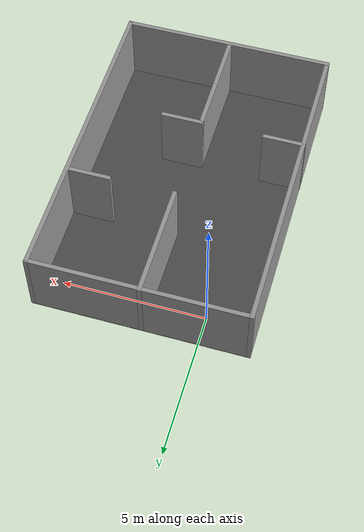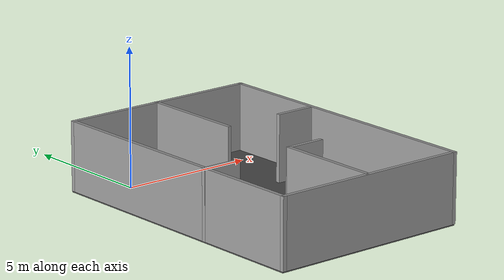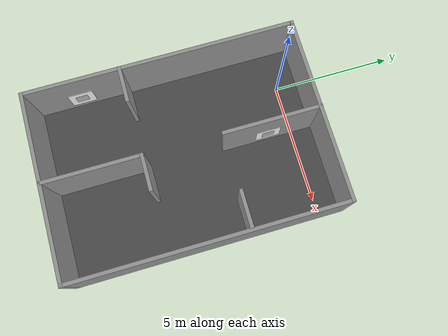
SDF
<sdf version="1.4">
 <world name="default">
  <scene><shadows>0</shadows></scene>
  <physics type="ode">
   <gravity>0 0 -9.81</gravity>
   <ode>
    <solver><type>quick</type><iters>20</iters><sor>1.0</sor></solver>
    <constraints>
     <cfm>0.0</cfm>
     <erp>0.2</erp>
     <contact_max_correcting_vel>100.0</contact_max_correcting_vel>
     <contact_surface_layer>0.0</contact_surface_layer>
    </constraints>
   </ode>
   <real_time_update_rate>200</real_time_update_rate>
   <max_step_size>0.001</max_step_size>
  </physics>
  <include><uri>model://sun</uri></include>
  <include><uri>model://floor_small</uri><name>floor</name><pose>2 -4.5 0 0 0 1.5708</pose></include>
  <include><uri>model://walls2</uri><name>walls</name><pose>2 -4.5 0 0 0 1.5708</pose></include>
  <include><uri>model://id2</uri><name>id2</name><pose>-1.6 -7.9811 0.8230 3.1416 1.5708 3.1416</pose></include>
  <include><uri>model://id3</uri><name>id3</name><pose>2 -1.0569 0.8230 3.1416 1.5708 3.1416</pose></include>
 </world>
</sdf>

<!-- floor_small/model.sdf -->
<sdf version="1.5">
  <model name="asphalt_plane">
    <static>true</static>
    <link name="link">
      <collision name="collision">
        <geometry>
          <box>
            <size>11 7.5 .1</size>
          </box>
        </geometry>
      </collision>
      <visual name="visual">
        <cast_shadows>false</cast_shadows>
        <geometry>
          <box>
            <size>11 7.5 .1</size>
          </box>
        </geometry>
        <material>
          <script>
            <uri>model://floor/materials/scripts</uri>
            <uri>model://floor/materials/textures</uri>
            <name>vrc/asphalt</name>
          </script>
        </material>
      </visual>
    </link>
  </model>
</sdf>

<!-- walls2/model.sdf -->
<sdf version='1.7'>
  <model name='walls2'>
    <pose>-3.60747 -1.34481 0 0 -0 0</pose>
    <link name='Wall_12'>
      <collision name='Wall_12_Collision'>
        <geometry>
          <box>
            <size>4 0.15 2.5</size>
          </box>
        </geometry>
        <pose>0 0 1.25 0 -0 0</pose>
      </collision>
      <visual name='Wall_12_Visual'>
        <pose>0 0 1.25 0 -0 0</pose>
        <geometry>
          <box>
            <size>4 0.15 2.5</size>
          </box>
        </geometry>
        <material>
          <script>
            <uri>model://walls/materials/scripts</uri>
            <uri>model://walls/materials/textures</uri>
            <name>vrc/grey_wall</name>
          </script>
          <ambient>1 1 1 1</ambient>
        </material>
        <meta>
          <layer>0</layer>
        </meta>
      </visual>
      <pose>-3.49907 0.092532 0 0 -0 0</pose>
    </link>
    <link name='Wall_13'>
      <collision name='Wall_13_Collision'>
        <geometry>
          <box>
            <size>1.5 0.15 2.5</size>
          </box>
        </geometry>
        <pose>0 0 1.25 0 -0 0</pose>
      </collision>
      <visual name='Wall_13_Visual'>
        <pose>0 0 1.25 0 -0 0</pose>
        <geometry>
          <box>
            <size>1.5 0.15 2.5</size>
          </box>
        </geometry>
        <material>
          <script>
            <uri>model://walls/materials/scripts</uri>
            <uri>model://walls/materials/textures</uri>
            <name>vrc/grey_wall</name>
          </script>
          <ambient>1 1 1 1</ambient>
        </material>
        <meta>
          <layer>0</layer>
        </meta>
      </visual>
      <pose>-1.57407 -0.582468 0 0 -0 -1.5708</pose>
    </link>
    <link name='Wall_15'>
      <collision name='Wall_15_Collision'>
        <geometry>
          <box>
            <size>1.5 0.15 2.5</size>
          </box>
        </geometry>
        <pose>0 0 1.25 0 -0 0</pose>
      </collision>
      <visual name='Wall_15_Visual'>
        <pose>0 0 1.25 0 -0 0</pose>
        <geometry>
          <box>
            <size>1.5 0.15 2.5</size>
          </box>
        </geometry>
        <material>
          <script>
            <uri>model://walls/materials/scripts</uri>
            <uri>model://walls/materials/textures</uri>
            <name>vrc/grey_wall</name>
          </script>
          <ambient>1 1 1 1</ambient>
        </material>
        <meta>
          <layer>0</layer>
        </meta>
      </visual>
      <pose>-1.58439 3.02591 0 0 -0 -1.5708</pose>
    </link>
    <link name='Wall_18'>
      <collision name='Wall_18_Collision'>
        <geometry>
          <box>
            <size>4 0.15 2.5</size>
          </box>
        </geometry>
        <pose>0 0 1.25 0 -0 0</pose>
      </collision>
      <visual name='Wall_18_Visual'>
        <pose>0 0 1.25 0 -0 0</pose>
        <geometry>
          <box>
            <size>4 0.15 2.5</size>
          </box>
        </geometry>
        <material>
          <script>
            <uri>model://walls/materials/scripts</uri>
            <uri>model://walls/materials/textures</uri>
            <name>vrc/grey_wall</name>
          </script>
          <ambient>1 1 1 1</ambient>
        </material>
        <meta>
          <layer>0</layer>
        </meta>
      </visual>
      <pose>3.52231 0.069401 0 0 -0 3.14159</pose>
    </link>
    <link name='Wall_19'>
      <collision name='Wall_19_Collision'>
        <geometry>
          <box>
            <size>1.5 0.15 2.5</size>
          </box>
        </geometry>
        <pose>0 0 1.25 0 -0 0</pose>
      </collision>
      <visual name='Wall_19_Visual'>
        <pose>0 0 1.25 0 -0 0</pose>
        <geometry>
          <box>
            <size>1.5 0.15 2.5</size>
          </box>
        </geometry>
        <material>
          <script>
            <uri>model://walls/materials/scripts</uri>
            <uri>model://walls/materials/textures</uri>
            <name>vrc/grey_wall</name>
          </script>
          <ambient>1 1 1 1</ambient>
        </material>
        <meta>
          <layer>0</layer>
        </meta>
      </visual>
      <pose>1.59731 -2.905599 0 0 -0 -1.5708</pose>
    </link>
    <link name='Wall_5'>
      <collision name='Wall_5_Collision'>
        <geometry>
          <box>
            <size>11.0367 0.15 2.5</size>
          </box>
        </geometry>
        <pose>0 0 1.25 0 -0 0</pose>
      </collision>
      <visual name='Wall_5_Visual'>
        <pose>0 0 1.25 0 -0 0</pose>
        <geometry>
          <box>
            <size>11.0367 0.15 2.5</size>
          </box>
        </geometry>
        <material>
          <script>
            <uri>model://walls/materials/scripts</uri>
            <uri>model://walls/materials/textures</uri>
            <name>vrc/grey_wall</name>
          </script>
          <ambient>1 1 1 1</ambient>
        </material>
        <meta>
          <layer>0</layer>
        </meta>
      </visual>
      <pose>-0.003982 -3.70089 0 0 -0 0</pose>
    </link>
    <link name='Wall_6'>
      <collision name='Wall_6_Collision'>
        <geometry>
          <box>
            <size>7.54277 0.15 2.5</size>
          </box>
        </geometry>
        <pose>0 0 1.25 0 -0 0</pose>
      </collision>
      <visual name='Wall_6_Visual'>
        <pose>0 0 1.25 0 -0 0</pose>
        <geometry>
          <box>
            <size>7.54277 0.15 2.5</size>
          </box>
        </geometry>
        <material>
          <script>
            <uri>model://walls/materials/scripts</uri>
            <uri>model://walls/materials/textures</uri>
            <name>vrc/grey_wall</name>
          </script>
          <ambient>1 1 1 1</ambient>
        </material>
        <meta>
          <layer>0</layer>
        </meta>
      </visual>
      <pose>5.43924 -0.004502 0 0 -0 1.5708</pose>
    </link>
    <link name='Wall_7'>
      <collision name='Wall_7_Collision'>
        <geometry>
          <box>
            <size>11.0367 0.15 2.5</size>
          </box>
        </geometry>
        <pose>0 0 1.25 0 -0 0</pose>
      </collision>
      <visual name='Wall_7_Visual'>
        <pose>0 0 1.25 0 -0 0</pose>
        <geometry>
          <box>
            <size>11.0367 0.15 2.5</size>
          </box>
        </geometry>
        <material>
          <script>
            <uri>model://walls/materials/scripts</uri>
            <uri>model://walls/materials/textures</uri>
            <name>vrc/grey_wall</name>
          </script>
          <ambient>1 1 1 1</ambient>
        </material>
        <meta>
          <layer>0</layer>
        </meta>
      </visual>
      <pose>-0.003982 3.69188 0 0 -0 3.14159</pose>
    </link>
    <link name='Wall_8'>
      <collision name='Wall_8_Collision'>
        <geometry>
          <box>
            <size>7.54281 0.15 2.5</size>
          </box>
        </geometry>
        <pose>0 0 1.25 0 -0 0</pose>
      </collision>
      <visual name='Wall_8_Visual'>
        <pose>0 0 1.25 0 -0 0</pose>
        <geometry>
          <box>
            <size>7.54281 0.15 2.5</size>
          </box>
        </geometry>
        <material>
          <script>
            <uri>model://walls/materials/scripts</uri>
            <uri>model://walls/materials/textures</uri>
            <name>vrc/grey_wall</name>
          </script>
          <ambient>1 1 1 1</ambient>
        </material>
        <meta>
          <layer>0</layer>
        </meta>
      </visual>
      <pose>-5.4472 -0.004502 0 0 -0 -1.5708</pose>
    </link>
    <static>1</static>
  </model>
</sdf>

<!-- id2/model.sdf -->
<sdf version="1.5">
    <model name="qr_id2">
    <static>true</static>
    <pose>0 0 0 0 0 0</pose>

    <link name="base">
      <collision name="collision">
        <geometry>

          <mesh>
            <uri>model://qr_base/meshes/qr_base.dae</uri>
          </mesh>
        </geometry>
      </collision>
      <visual name="visual">
        <geometry>
          <mesh>
            <uri>model://qr_base/meshes/qr_base.dae</uri>
          </mesh>
        </geometry>
        <cast_shadows>false</cast_shadows>
      </visual>
    </link>

		<joint name="base_marker_joint" type="fixed">
			<parent>base</parent>
			<child>id2_25cm</child>
		</joint>

		<link name="id2">
    	<pose>0 0 0.01 0 0 1.57</pose>
      <collision name="collision">
        <geometry>
          <mesh>
            <uri>model://id2/meshes/id2.dae</uri>
          </mesh>
        </geometry>
      </collision>
      <visual name="visual">
        <geometry>
          <mesh>
            <uri>model://id2/meshes/id2.dae</uri>
          </mesh>
        </geometry>
        <cast_shadows>false</cast_shadows>
      </visual>
    </link>

  </model>
</sdf>

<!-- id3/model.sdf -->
<sdf version="1.5">
    <model name="qr_id3">
    <static>true</static>
    <pose>0 0 0 0 0 0</pose>

    <link name="base">
      <collision name="collision">
        <geometry>

          <mesh>
            <uri>model://qr_base/meshes/qr_base.dae</uri>
          </mesh>
        </geometry>
      </collision>
      <visual name="visual">
        <geometry>
          <mesh>
            <uri>model://qr_base/meshes/qr_base.dae</uri>
          </mesh>
        </geometry>
        <cast_shadows>false</cast_shadows>
      </visual>
    </link>

		<joint name="base_marker_joint" type="fixed">
			<parent>base</parent>
			<child>id3_25cm</child>
		</joint>

		<link name="id3">
    	<pose>0 0 0.01 0 0 1.57</pose>
      <collision name="collision">
        <geometry>
          <mesh>
            <uri>model://id3/meshes/id3.dae</uri>
          </mesh>
        </geometry>
      </collision>
      <visual name="visual">
        <geometry>
          <mesh>
            <uri>model://id3/meshes/id3.dae</uri>
          </mesh>
        </geometry>
        <cast_shadows>false</cast_shadows>
      </visual>
    </link>

  </model>
</sdf>
